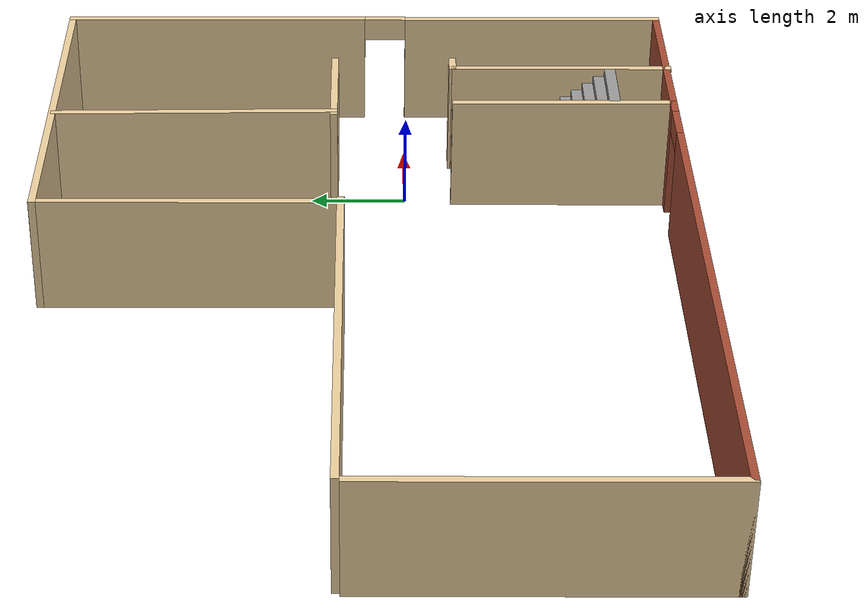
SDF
<?xml version='1.0'?>
<sdf version='1.6'>
  <model name='lounge'>
    <pose frame=''>-4.57476 0.874127 0 0 -0 0</pose>
    <link name='Stairs_0'>
      <visual name='Stairs_0_Visual_0'>
        <pose frame=''>5.26794 -2.03684 0.083333 0 -0 0</pose>
        <geometry>
          <box>
            <size>1.41269 0.233333 0.166667</size>
          </box>
        </geometry>
        <material>
          <script>
            <uri>file://media/materials/scripts/gazebo.material</uri>
            <name>Gazebo/Grey</name>
          </script>
          <ambient>1 1 1 1</ambient>
        </material>
        <meta>
          <layer>0</layer>
        </meta>
      </visual>
      <collision name='Stairs_0_Collision_0'>
        <geometry>
          <box>
            <size>1.41269 0.233333 0.166667</size>
          </box>
        </geometry>
        <pose frame=''>5.26794 -2.03684 0.083333 0 -0 0</pose>
      </collision>
      <visual name='Stairs_0_Visual_1'>
        <pose frame=''>5.26794 -2.27017 0.25 0 -0 0</pose>
        <geometry>
          <box>
            <size>1.41269 0.233333 0.166667</size>
          </box>
        </geometry>
        <material>
          <script>
            <uri>file://media/materials/scripts/gazebo.material</uri>
            <name>Gazebo/Grey</name>
          </script>
          <ambient>1 1 1 1</ambient>
        </material>
        <meta>
          <layer>0</layer>
        </meta>
      </visual>
      <collision name='Stairs_0_Collision_1'>
        <geometry>
          <box>
            <size>1.41269 0.233333 0.166667</size>
          </box>
        </geometry>
        <pose frame=''>5.26794 -2.27017 0.25 0 -0 0</pose>
      </collision>
      <visual name='Stairs_0_Visual_2'>
        <pose frame=''>5.26794 -2.50351 0.416667 0 -0 0</pose>
        <geometry>
          <box>
            <size>1.41269 0.233333 0.166667</size>
          </box>
        </geometry>
        <material>
          <script>
            <uri>file://media/materials/scripts/gazebo.material</uri>
            <name>Gazebo/Grey</name>
          </script>
          <ambient>1 1 1 1</ambient>
        </material>
        <meta>
          <layer>0</layer>
        </meta>
      </visual>
      <collision name='Stairs_0_Collision_2'>
        <geometry>
          <box>
            <size>1.41269 0.233333 0.166667</size>
          </box>
        </geometry>
        <pose frame=''>5.26794 -2.50351 0.416667 0 -0 0</pose>
      </collision>
      <visual name='Stairs_0_Visual_3'>
        <pose frame=''>5.26794 -2.73684 0.583333 0 -0 0</pose>
        <geometry>
          <box>
            <size>1.41269 0.233333 0.166667</size>
          </box>
        </geometry>
        <material>
          <script>
            <uri>file://media/materials/scripts/gazebo.material</uri>
            <name>Gazebo/Grey</name>
          </script>
          <ambient>1 1 1 1</ambient>
        </material>
        <meta>
          <layer>0</layer>
        </meta>
      </visual>
      <collision name='Stairs_0_Collision_3'>
        <geometry>
          <box>
            <size>1.41269 0.233333 0.166667</size>
          </box>
        </geometry>
        <pose frame=''>5.26794 -2.73684 0.583333 0 -0 0</pose>
      </collision>
      <visual name='Stairs_0_Visual_4'>
        <pose frame=''>5.26794 -2.97017 0.75 0 -0 0</pose>
        <geometry>
          <box>
            <size>1.41269 0.233333 0.166667</size>
          </box>
        </geometry>
        <material>
          <script>
            <uri>file://media/materials/scripts/gazebo.material</uri>
            <name>Gazebo/Grey</name>
          </script>
          <ambient>1 1 1 1</ambient>
        </material>
        <meta>
          <layer>0</layer>
        </meta>
      </visual>
      <collision name='Stairs_0_Collision_4'>
        <geometry>
          <box>
            <size>1.41269 0.233333 0.166667</size>
          </box>
        </geometry>
        <pose frame=''>5.26794 -2.97017 0.75 0 -0 0</pose>
      </collision>
      <visual name='Stairs_0_Visual_5'>
        <pose frame=''>5.26794 -3.2035 0.916667 0 -0 0</pose>
        <geometry>
          <box>
            <size>1.41269 0.233333 0.166667</size>
          </box>
        </geometry>
        <material>
          <script>
            <uri>file://media/materials/scripts/gazebo.material</uri>
            <name>Gazebo/Grey</name>
          </script>
          <ambient>1 1 1 1</ambient>
        </material>
        <meta>
          <layer>0</layer>
        </meta>
      </visual>
      <collision name='Stairs_0_Collision_5'>
        <geometry>
          <box>
            <size>1.41269 0.233333 0.166667</size>
          </box>
        </geometry>
        <pose frame=''>5.26794 -3.2035 0.916667 0 -0 0</pose>
      </collision>
      <visual name='Stairs_0_Visual_6'>
        <pose frame=''>5.26794 -3.43684 1.08333 0 -0 0</pose>
        <geometry>
          <box>
            <size>1.41269 0.233333 0.166667</size>
          </box>
        </geometry>
        <material>
          <script>
            <uri>file://media/materials/scripts/gazebo.material</uri>
            <name>Gazebo/Grey</name>
          </script>
          <ambient>1 1 1 1</ambient>
        </material>
        <meta>
          <layer>0</layer>
        </meta>
      </visual>
      <collision name='Stairs_0_Collision_6'>
        <geometry>
          <box>
            <size>1.41269 0.233333 0.166667</size>
          </box>
        </geometry>
        <pose frame=''>5.26794 -3.43684 1.08333 0 -0 0</pose>
      </collision>
      <visual name='Stairs_0_Visual_7'>
        <pose frame=''>5.26794 -3.67017 1.25 0 -0 0</pose>
        <geometry>
          <box>
            <size>1.41269 0.233333 0.166667</size>
          </box>
        </geometry>
        <material>
          <script>
            <uri>file://media/materials/scripts/gazebo.material</uri>
            <name>Gazebo/Grey</name>
          </script>
          <ambient>1 1 1 1</ambient>
        </material>
        <meta>
          <layer>0</layer>
        </meta>
      </visual>
      <collision name='Stairs_0_Collision_7'>
        <geometry>
          <box>
            <size>1.41269 0.233333 0.166667</size>
          </box>
        </geometry>
        <pose frame=''>5.26794 -3.67017 1.25 0 -0 0</pose>
      </collision>
      <visual name='Stairs_0_Visual_8'>
        <pose frame=''>5.26794 -3.90351 1.41667 0 -0 0</pose>
        <geometry>
          <box>
            <size>1.41269 0.233333 0.166667</size>
          </box>
        </geometry>
        <material>
          <script>
            <uri>file://media/materials/scripts/gazebo.material</uri>
            <name>Gazebo/Grey</name>
          </script>
          <ambient>1 1 1 1</ambient>
        </material>
        <meta>
          <layer>0</layer>
        </meta>
      </visual>
      <collision name='Stairs_0_Collision_8'>
        <geometry>
          <box>
            <size>1.41269 0.233333 0.166667</size>
          </box>
        </geometry>
        <pose frame=''>5.26794 -3.90351 1.41667 0 -0 0</pose>
      </collision>
      <visual name='Stairs_0_Visual_9'>
        <pose frame=''>5.26794 -4.13684 1.58333 0 -0 0</pose>
        <geometry>
          <box>
            <size>1.41269 0.233333 0.166667</size>
          </box>
        </geometry>
        <material>
          <script>
            <uri>file://media/materials/scripts/gazebo.material</uri>
            <name>Gazebo/Grey</name>
          </script>
          <ambient>1 1 1 1</ambient>
        </material>
        <meta>
          <layer>0</layer>
        </meta>
      </visual>
      <collision name='Stairs_0_Collision_9'>
        <geometry>
          <box>
            <size>1.41269 0.233333 0.166667</size>
          </box>
        </geometry>
        <pose frame=''>5.26794 -4.13684 1.58333 0 -0 0</pose>
      </collision>
      <visual name='Stairs_0_Visual_10'>
        <pose frame=''>5.26794 -4.37017 1.75 0 -0 0</pose>
        <geometry>
          <box>
            <size>1.41269 0.233333 0.166667</size>
          </box>
        </geometry>
        <material>
          <script>
            <uri>file://media/materials/scripts/gazebo.material</uri>
            <name>Gazebo/Grey</name>
          </script>
          <ambient>1 1 1 1</ambient>
        </material>
        <meta>
          <layer>0</layer>
        </meta>
      </visual>
      <collision name='Stairs_0_Collision_10'>
        <geometry>
          <box>
            <size>1.41269 0.233333 0.166667</size>
          </box>
        </geometry>
        <pose frame=''>5.26794 -4.37017 1.75 0 -0 0</pose>
      </collision>
      <visual name='Stairs_0_Visual_11'>
        <pose frame=''>5.26794 -4.60351 1.91667 0 -0 0</pose>
        <geometry>
          <box>
            <size>1.41269 0.233333 0.166667</size>
          </box>
        </geometry>
        <material>
          <script>
            <uri>file://media/materials/scripts/gazebo.material</uri>
            <name>Gazebo/Grey</name>
          </script>
          <ambient>1 1 1 1</ambient>
        </material>
        <meta>
          <layer>0</layer>
        </meta>
      </visual>
      <collision name='Stairs_0_Collision_11'>
        <geometry>
          <box>
            <size>1.41269 0.233333 0.166667</size>
          </box>
        </geometry>
        <pose frame=''>5.26794 -4.60351 1.91667 0 -0 0</pose>
      </collision>
      <visual name='Stairs_0_Visual_12'>
        <pose frame=''>5.26794 -4.83684 2.08333 0 -0 0</pose>
        <geometry>
          <box>
            <size>1.41269 0.233333 0.166667</size>
          </box>
        </geometry>
        <material>
          <script>
            <uri>file://media/materials/scripts/gazebo.material</uri>
            <name>Gazebo/Grey</name>
          </script>
          <ambient>1 1 1 1</ambient>
        </material>
        <meta>
          <layer>0</layer>
        </meta>
      </visual>
      <collision name='Stairs_0_Collision_12'>
        <geometry>
          <box>
            <size>1.41269 0.233333 0.166667</size>
          </box>
        </geometry>
        <pose frame=''>5.26794 -4.83684 2.08333 0 -0 0</pose>
      </collision>
      <visual name='Stairs_0_Visual_13'>
        <pose frame=''>5.26794 -5.07017 2.25 0 -0 0</pose>
        <geometry>
          <box>
            <size>1.41269 0.233333 0.166667</size>
          </box>
        </geometry>
        <material>
          <script>
            <uri>file://media/materials/scripts/gazebo.material</uri>
            <name>Gazebo/Grey</name>
          </script>
          <ambient>1 1 1 1</ambient>
        </material>
        <meta>
          <layer>0</layer>
        </meta>
      </visual>
      <collision name='Stairs_0_Collision_13'>
        <geometry>
          <box>
            <size>1.41269 0.233333 0.166667</size>
          </box>
        </geometry>
        <pose frame=''>5.26794 -5.07017 2.25 0 -0 0</pose>
      </collision>
      <visual name='Stairs_0_Visual_14'>
        <pose frame=''>5.26794 -5.30351 2.41667 0 -0 0</pose>
        <geometry>
          <box>
            <size>1.41269 0.233333 0.166667</size>
          </box>
        </geometry>
        <material>
          <script>
            <uri>file://media/materials/scripts/gazebo.material</uri>
            <name>Gazebo/Grey</name>
          </script>
          <ambient>1 1 1 1</ambient>
        </material>
        <meta>
          <layer>0</layer>
        </meta>
      </visual>
      <collision name='Stairs_0_Collision_14'>
        <geometry>
          <box>
            <size>1.41269 0.233333 0.166667</size>
          </box>
        </geometry>
        <pose frame=''>5.26794 -5.30351 2.41667 0 -0 0</pose>
      </collision>
    </link>
    <link name='Wall_25'>
      <collision name='Wall_25_Collision'>
        <geometry>
          <box>
            <size>7 0.15 2.5</size>
          </box>
        </geometry>
        <pose frame=''>0 0 1.25 0 -0 0</pose>
      </collision>
      <visual name='Wall_25_Visual'>
        <pose frame=''>0 0 1.25 0 -0 0</pose>
        <geometry>
          <box>
            <size>7 0.15 2.5</size>
          </box>
        </geometry>
        <material>
          <script>
            <uri>file://media/materials/scripts/gazebo.material</uri>
            <name>Gazebo/Grey</name>
          </script>
          <ambient>0.921569 0.807843 0.615686 1</ambient>
        </material>
        <meta>
          <layer>0</layer>
        </meta>
      </visual>
      <pose frame=''>-8.35 -3.11051 0 0 0 -1.5708</pose>
    </link>
    <link name='Wall_27'>
      <pose frame=''>-1.925 -6.53552 0 0 -0 0</pose>
      <visual name='Wall_27_Visual_0'>
        <pose frame=''>-0.677313 0 1.25 0 -0 0</pose>
        <geometry>
          <box>
            <size>11.6454 0.15 2.5</size>
          </box>
        </geometry>
        <material>
          <script>
            <uri>file://media/materials/scripts/gazebo.material</uri>
            <name>Gazebo/Bricks</name>
          </script>
          <ambient>1 1 1 1</ambient>
        </material>
        <meta>
          <layer>0</layer>
        </meta>
      </visual>
      <collision name='Wall_27_Collision_0'>
        <geometry>
          <box>
            <size>11.6454 0.15 2.5</size>
          </box>
        </geometry>
        <pose frame=''>-0.677313 0 1.25 0 -0 0</pose>
      </collision>
      <visual name='Wall_27_Visual_1'>
        <pose frame=''>6.27269 0 1.25 0 -0 0</pose>
        <geometry>
          <box>
            <size>0.454627 0.15 2.5</size>
          </box>
        </geometry>
        <material>
          <script>
            <uri>file://media/materials/scripts/gazebo.material</uri>
            <name>Gazebo/Bricks</name>
          </script>
          <ambient>1 1 1 1</ambient>
        </material>
        <meta>
          <layer>0</layer>
        </meta>
      </visual>
      <collision name='Wall_27_Collision_1'>
        <geometry>
          <box>
            <size>0.454627 0.15 2.5</size>
          </box>
        </geometry>
        <pose frame=''>6.27269 0 1.25 0 -0 0</pose>
      </collision>
      <visual name='Wall_27_Visual_2'>
        <pose frame=''>5.59537 0 2.25 0 -0 0</pose>
        <geometry>
          <box>
            <size>0.9 0.15 0.5</size>
          </box>
        </geometry>
        <material>
          <script>
            <uri>file://media/materials/scripts/gazebo.material</uri>
            <name>Gazebo/Bricks</name>
          </script>
          <ambient>1 1 1 1</ambient>
        </material>
        <meta>
          <layer>0</layer>
        </meta>
      </visual>
      <collision name='Wall_27_Collision_2'>
        <geometry>
          <box>
            <size>0.9 0.15 0.5</size>
          </box>
        </geometry>
        <pose frame=''>5.59537 0 2.25 0 -0 0</pose>
      </collision>
    </link>
    <link name='Wall_28'>
      <collision name='Wall_28_Collision'>
        <geometry>
          <box>
            <size>4.75 0.15 2.5</size>
          </box>
        </geometry>
        <pose frame=''>0 0 1.25 0 -0 0</pose>
      </collision>
      <visual name='Wall_28_Visual'>
        <pose frame=''>0 0 1.25 0 -0 0</pose>
        <geometry>
          <box>
            <size>4.75 0.15 2.5</size>
          </box>
        </geometry>
        <material>
          <script>
            <uri>file://media/materials/scripts/gazebo.material</uri>
            <name>Gazebo/Grey</name>
          </script>
          <ambient>0.921569 0.807843 0.615686 1</ambient>
        </material>
        <meta>
          <layer>0</layer>
        </meta>
      </visual>
      <pose frame=''>4.5 -4.23552 0 0 -0 1.5708</pose>
    </link>
    <link name='Wall_30'>
      <collision name='Wall_30_Collision'>
        <geometry>
          <box>
            <size>4 0.15 2.5</size>
          </box>
        </geometry>
        <pose frame=''>0 0 1.25 0 -0 0</pose>
      </collision>
      <visual name='Wall_30_Visual'>
        <pose frame=''>0 0 1.25 0 -0 0</pose>
        <geometry>
          <box>
            <size>4 0.15 2.5</size>
          </box>
        </geometry>
        <material>
          <script>
            <uri>file://media/materials/scripts/gazebo.material</uri>
            <name>Gazebo/Bricks</name>
          </script>
          <ambient>1 1 1 1</ambient>
        </material>
        <meta>
          <layer>0</layer>
        </meta>
      </visual>
      <pose frame=''>6.425 -6.53552 0 0 -0 0</pose>
    </link>
    <link name='Wall_31'>
      <pose frame=''>8.35 0.014485 0 0 -0 1.5708</pose>
      <visual name='Wall_31_Visual_0'>
        <pose frame=''>-3.77058 0 1.25 0 -0 0</pose>
        <geometry>
          <box>
            <size>5.70883 0.15 2.5</size>
          </box>
        </geometry>
        <material>
          <script>
            <uri>file://media/materials/scripts/gazebo.material</uri>
            <name>Gazebo/Grey</name>
          </script>
          <ambient>0.921569 0.807843 0.615686 1</ambient>
        </material>
        <meta>
          <layer>0</layer>
        </meta>
      </visual>
      <collision name='Wall_31_Collision_0'>
        <geometry>
          <box>
            <size>5.70883 0.15 2.5</size>
          </box>
        </geometry>
        <pose frame=''>-3.77058 0 1.25 0 -0 0</pose>
      </collision>
      <visual name='Wall_31_Visual_1'>
        <pose frame=''>3.30442 0 1.25 0 -0 0</pose>
        <geometry>
          <box>
            <size>6.64117 0.15 2.5</size>
          </box>
        </geometry>
        <material>
          <script>
            <uri>file://media/materials/scripts/gazebo.material</uri>
            <name>Gazebo/Grey</name>
          </script>
          <ambient>0.921569 0.807843 0.615686 1</ambient>
        </material>
        <meta>
          <layer>0</layer>
        </meta>
      </visual>
      <collision name='Wall_31_Collision_1'>
        <geometry>
          <box>
            <size>6.64117 0.15 2.5</size>
          </box>
        </geometry>
        <pose frame=''>3.30442 0 1.25 0 -0 0</pose>
      </collision>
      <visual name='Wall_31_Visual_2'>
        <pose frame=''>-0.466169 0 2.25 0 -0 0</pose>
        <geometry>
          <box>
            <size>0.9 0.15 0.5</size>
          </box>
        </geometry>
        <material>
          <script>
            <uri>file://media/materials/scripts/gazebo.material</uri>
            <name>Gazebo/Grey</name>
          </script>
          <ambient>0.921569 0.807843 0.615686 1</ambient>
        </material>
        <meta>
          <layer>0</layer>
        </meta>
      </visual>
      <collision name='Wall_31_Collision_2'>
        <geometry>
          <box>
            <size>0.9 0.15 0.5</size>
          </box>
        </geometry>
        <pose frame=''>-0.466169 0 2.25 0 -0 0</pose>
      </collision>
    </link>
    <link name='Wall_32'>
      <collision name='Wall_32_Collision'>
        <geometry>
          <box>
            <size>8 0.15 2.5</size>
          </box>
        </geometry>
        <pose frame=''>0 0 1.25 0 -0 0</pose>
      </collision>
      <visual name='Wall_32_Visual'>
        <pose frame=''>0 0 1.25 0 -0 0</pose>
        <geometry>
          <box>
            <size>8 0.15 2.5</size>
          </box>
        </geometry>
        <material>
          <script>
            <uri>file://media/materials/scripts/gazebo.material</uri>
            <name>Gazebo/Grey</name>
          </script>
          <ambient>0.921569 0.807843 0.615686 1</ambient>
        </material>
        <meta>
          <layer>0</layer>
        </meta>
      </visual>
      <pose frame=''>4.425 6.56449 0 0 -0 3.14159</pose>
    </link>
    <link name='Wall_33'>
      <collision name='Wall_33_Collision'>
        <geometry>
          <box>
            <size>6.25052 0.15 2.5</size>
          </box>
        </geometry>
        <pose frame=''>0 0 1.25 0 -0 0</pose>
      </collision>
      <visual name='Wall_33_Visual'>
        <pose frame=''>0 0 1.25 0 -0 0</pose>
        <geometry>
          <box>
            <size>6.25052 0.15 2.5</size>
          </box>
        </geometry>
        <material>
          <script>
            <uri>file://media/materials/scripts/gazebo.material</uri>
            <name>Gazebo/Grey</name>
          </script>
          <ambient>0.921569 0.807843 0.615686 1</ambient>
        </material>
        <meta>
          <layer>0</layer>
        </meta>
      </visual>
      <pose frame=''>0.5 3.51449 0 0 0 -1.5708</pose>
    </link>
    <link name='Wall_34'>
      <collision name='Wall_34_Collision'>
        <geometry>
          <box>
            <size>9 0.15 2.5</size>
          </box>
        </geometry>
        <pose frame=''>0 0 1.25 0 -0 0</pose>
      </collision>
      <visual name='Wall_34_Visual'>
        <pose frame=''>0 0 1.25 0 -0 0</pose>
        <geometry>
          <box>
            <size>9 0.15 2.5</size>
          </box>
        </geometry>
        <material>
          <script>
            <uri>file://media/materials/scripts/gazebo.material</uri>
            <name>Gazebo/Grey</name>
          </script>
          <ambient>0.921569 0.807843 0.615686 1</ambient>
        </material>
        <meta>
          <layer>0</layer>
        </meta>
      </visual>
      <pose frame=''>-3.845 0.464485 0 0 -0 3.14159</pose>
    </link>
    <link name='Wall_36'>
      <collision name='Wall_36_Collision'>
        <geometry>
          <box>
            <size>6.02472 0.15 2.5</size>
          </box>
        </geometry>
        <pose frame=''>0 0 1.25 0 -0 0</pose>
      </collision>
      <visual name='Wall_36_Visual'>
        <pose frame=''>0 0 1.25 0 -0 0</pose>
        <geometry>
          <box>
            <size>6.02472 0.15 2.5</size>
          </box>
        </geometry>
        <material>
          <script>
            <uri>file://media/materials/scripts/gazebo.material</uri>
            <name>Gazebo/Grey</name>
          </script>
          <ambient>0.921569 0.807843 0.615686 1</ambient>
        </material>
        <meta>
          <layer>0</layer>
        </meta>
      </visual>
      <pose frame=''>4.08753 3.58036 0 0 0 -1.55513</pose>
    </link>
    <link name='Wall_37'>
      <collision name='Wall_37_Collision'>
        <geometry>
          <box>
            <size>2.5 0.15 2.5</size>
          </box>
        </geometry>
        <pose frame=''>0 0 1.25 0 -0 0</pose>
      </collision>
      <visual name='Wall_37_Visual'>
        <pose frame=''>0 0 1.25 0 -0 0</pose>
        <geometry>
          <box>
            <size>2.5 0.15 2.5</size>
          </box>
        </geometry>
        <material>
          <script>
            <uri>file://media/materials/scripts/gazebo.material</uri>
            <name>Gazebo/Grey</name>
          </script>
          <ambient>0.921569 0.807843 0.615686 1</ambient>
        </material>
        <meta>
          <layer>0</layer>
        </meta>
      </visual>
      <pose frame=''>5.21653 0.643356 0 0 -0 0</pose>
    </link>
    <link name='Wall_39'>
      <collision name='Wall_39_Collision'>
        <geometry>
          <box>
            <size>4.75 0.15 2.5</size>
          </box>
        </geometry>
        <pose frame=''>0 0 1.25 0 -0 0</pose>
      </collision>
      <visual name='Wall_39_Visual'>
        <pose frame=''>0 0 1.25 0 -0 0</pose>
        <geometry>
          <box>
            <size>4.75 0.15 2.5</size>
          </box>
        </geometry>
        <material>
          <script>
            <uri>file://media/materials/scripts/gazebo.material</uri>
            <name>Gazebo/Grey</name>
          </script>
          <ambient>0.921569 0.807843 0.615686 1</ambient>
        </material>
        <meta>
          <layer>0</layer>
        </meta>
      </visual>
      <pose frame=''>6.03095 -4.26475 0 0 0 -1.5708</pose>
    </link>
    <link name='Wall_41'>
      <collision name='Wall_41_Collision'>
        <geometry>
          <box>
            <size>0.5 0.15 2.5</size>
          </box>
        </geometry>
        <pose frame=''>0 0 1.25 0 -0 0</pose>
      </collision>
      <visual name='Wall_41_Visual'>
        <pose frame=''>0 0 1.25 0 -0 0</pose>
        <geometry>
          <box>
            <size>0.5 0.15 2.5</size>
          </box>
        </geometry>
        <material>
          <script>
            <uri>file://media/materials/scripts/gazebo.material</uri>
            <name>Gazebo/Grey</name>
          </script>
          <ambient>0.921569 0.807843 0.615686 1</ambient>
        </material>
        <meta>
          <layer>0</layer>
        </meta>
      </visual>
      <pose frame=''>6.21776 -1.90848 0 0 -0 0</pose>
    </link>
    <static>1</static>
  </model>
</sdf>
